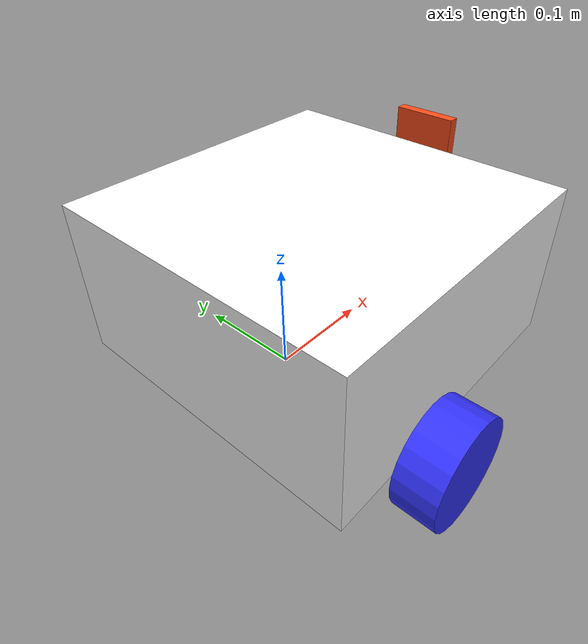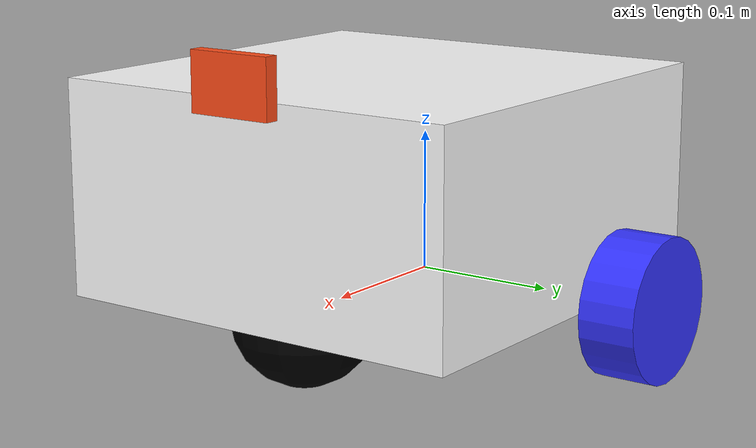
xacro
<?xml version="1.0"?>
<robot xmlns:xacro="http://www.ros.org/wiki/xacro" name="robot">

    <xacro:arg name="ros2_control" default="True"/>

    <xacro:include filename="robot_core.xacro"/>

    <xacro:if value="$(arg ros2_control)">
        <xacro:include filename="ros2_control.xacro"/>
    </xacro:if>
    <xacro:unless value="$(arg ros2_control)">
        <xacro:include filename="gazebo_control.xacro"/>
    </xacro:unless>

    <xacro:include filename="imu.xacro"/>
    <xacro:include filename="depth_camera.xacro"/>

</robot>

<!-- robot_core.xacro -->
<robot xmlns:xacro="http://www.ros.org/wiki/xacro" >

    <xacro:include filename="inertial_macros.xacro"/>

    <material name="white">
        <color rgba="1 1 1 1" />
    </material>

    <material name="orange">
        <color rgba="1 0.3 0.1 1"/>
    </material>

    <material name="blue">
        <color rgba="0.2 0.2 1 1"/>
    </material>

    <material name="red">
        <color rgba="1 0.2 0.2 1"/>
    </material>

    <material name="black">
        <color rgba="0 0 0 1"/>
    </material>

    <!-- BASE LINK -->

    <link name="base_link" />

    <!-- BASE FOOTPRINT LINK-->

    <link name="base_footprint" />
    <joint name="base_footprint_joint" type="fixed">
        <parent link="base_link"/>
        <child link="base_footprint"/>
        <origin xyz="0 0 0" rpy="0 0 0"/>
    </joint>

    <!-- CHASSIS LINK -->

    <joint name="chassis_joint" type="fixed">
        <parent link="base_link"/>
        <child link="chassis"/>
        <origin xyz="-0.1 0 0"/>
    </joint>

    <link name="chassis">
        <visual>
            <origin xyz="0.15 0 0.075"/>
            <geometry>
                <box size="0.3 0.3 0.15"/>
            </geometry>
            <material name="white"/>
        </visual>
        <collision>
            <origin xyz="0.15 0 0.075"/>
            <geometry>
                <box size="0.3 0.3 0.15"/>
            </geometry>
        </collision>
        <xacro:inertial_box mass="0.5" x="0.3" y="0.3" z="0.15">
            <origin xyz="0.15 0 0.075" rpy="0 0 0"/>
        </xacro:inertial_box>
    </link>

    <gazebo reference="chassis">
        <material>Gazebo/White</material>
    </gazebo>

    <!-- LEFT WHEEL LINK -->

    <joint name="left_wheel_joint" type="continuous">
        <parent link="base_link"/>
        <child link="left_wheel"/>
        <origin xyz="0 0.175 0" rpy="-${pi/2} 0 0" />
        <axis xyz="0 0 1"/>
    </joint>

    <link name="left_wheel">
        <visual>
            <geometry>
                <cylinder radius="0.05" length="0.04"/>
            </geometry>
            <material name="blue"/>
        </visual>
        <collision>
            <geometry>
                <cylinder radius="0.05" length="0.04"/>
            </geometry>
        </collision>
        <xacro:inertial_cylinder mass="0.1" length="0.04" radius="0.05">
            <origin xyz="0 0 0" rpy="0 0 0"/>
        </xacro:inertial_cylinder>
    </link>

    <gazebo reference="left_wheel">
        <material>Gazebo/Blue</material>
    </gazebo>

    <!-- RIGHT WHEEL LINK -->

    <joint name="right_wheel_joint" type="continuous">
        <parent link="base_link"/>
        <child link="right_wheel"/>
        <origin xyz="0 -0.175 0" rpy="${pi/2} 0 0" />
        <axis xyz="0 0 -1"/>
    </joint>

    <link name="right_wheel">
        <visual>
            <geometry>
                <cylinder radius="0.05" length="0.04"/>
            </geometry>
            <material name="blue"/>
        </visual>
        <collision>
            <geometry>
                <cylinder radius="0.05" length="0.04"/>
            </geometry>
        </collision>
        <xacro:inertial_cylinder mass="0.1" length="0.04" radius="0.05">
            <origin xyz="0 0 0" rpy="0 0 0"/>
        </xacro:inertial_cylinder>
    </link>

    <gazebo reference="right_wheel">
        <material>Gazebo/Blue</material>
    </gazebo>

    <!-- CASTER WHEEL LINK -->

    <joint name="caster_wheel_joint" type="fixed">
        <parent link="chassis"/>
        <child link="caster_wheel"/>
        <origin xyz="0.24 0 0"/>
    </joint>

    <link name="caster_wheel">
        <visual>
            <geometry>
                <sphere radius="0.05"/>
            </geometry>
            <material name="black"/>
        </visual>
        <collision>
            <geometry>
                <sphere radius="0.05"/>
            </geometry>
        </collision>
        <xacro:inertial_sphere mass="0.1" radius="0.05">
            <origin xyz="0 0 0" rpy="0 0 0"/>
        </xacro:inertial_sphere>
    </link>

    <gazebo reference="caster_wheel">
        <material>Gazebo/Black</material>
        <mu1 value="0.0001"/>
        <mu2 value="0.0001"/>
    </gazebo>

</robot>

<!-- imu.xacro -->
<robot xmlns:xacro="http://www.ros.org/wiki/xacro">

    <link name="imu_link">
        <visual>
            <geometry>
                <box size="0.04 0.04 0.02"/>
            </geometry>
            <material name="orange"/>
        </visual>
    </link>

    <joint name="imu_joint" type="fixed">
      <parent link="base_link" />
        <child link="imu_link" />
        <origin xyz="-0.032 0 0.068" rpy="0 0 0"/>
    </joint>

    <gazebo reference="imu_link">
        <material>Gazebo/Orange</material>

        <sensor name="imu" type="imu">
            <pose>0 0 0 0 0 0</pose>
            <always_on>true</always_on>
            <update_rate>100</update_rate>
            <visualize>true</visualize>
            <imu>
                <angular_velocity>
                    <x>
                        <noise type="gaussian">
                            <mean>0.0</mean>
                            <stddev>2e-4</stddev>
                        </noise>
                    </x>
                    <y>
                        <noise type="gaussian">
                            <mean>0.0</mean>
                            <stddev>2e-4</stddev>
                        </noise>
                    </y>
                    <z>
                        <noise type="gaussian">
                            <mean>0.0</mean>
                            <stddev>2e-4</stddev>
                        </noise>
                    </z>
                </angular_velocity>
                <linear_acceleration>
                    <x>
                        <noise type="gaussian">
                            <mean>0.0</mean>
                            <stddev>1.7e-2</stddev>
                        </noise>
                    </x>
                    <y>
                        <noise type="gaussian">
                            <mean>0.0</mean>
                            <stddev>1.7e-2</stddev>
                        </noise>
                    </y>
                    <z>
                        <noise type="gaussian">
                            <mean>0.0</mean>
                            <stddev>1.7e-2</stddev>
                        </noise>
                    </z>
                </linear_acceleration>
            </imu>
            <plugin name="imu" filename="libgazebo_ros_imu_sensor.so">
                <ros>
                    <remapping>~/out:=imu</remapping>
                </ros>
            </plugin>
        </sensor>
    </gazebo>

</robot>

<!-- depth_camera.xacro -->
<robot xmlns:xacro="http://www.ros.org/wiki/xacro">

  <joint name="camera_joint" type="fixed">
    <parent link="chassis"/>
    <child  link="camera_link"/>
    <origin xyz="0.307 0 0.16" rpy="0 0 0"/>
  </joint>

  <link name="camera_link">
    <visual>
      <geometry>
        <box size="0.010 0.06 0.04"/>
      </geometry>
      <material name="orange"/>
    </visual>
  </link>

  <!-- intermediate frame -->

  <!-- optical frame with inertial expressed in URDF form -->
  <link name="camera_rgb_optical_frame">
  </link>

  <joint name="camera_rgb_optical_joint" type="fixed">
    <parent link="camera_link"/>
    <child  link="camera_rgb_optical_frame"/>
    <!-- rpy as in your original (roll, pitch, yaw) -->
    <origin xyz="0 0 0" rpy="${-pi/2} 0 ${-pi/2}"/>
  </joint>

  <gazebo reference="camera_link">
    <sensor name="camera" type="depth">
      <always_on>true</always_on>
      <visualize>true</visualize>
      <update_rate>30</update_rate>

      <camera name="intel_realsense_d455">
        <horizontal_fov>1.02974</horizontal_fov>
        <image>
          <width>640</width>
          <height>480</height>
          <format>B8G8R8</format>
        </image>
        <clip>
          <near>0.02</near>
          <far>300</far>
        </clip>
        <noise>
          <type>gaussian</type>
          <mean>0.0</mean>
          <stddev>0.007</stddev>
        </noise>
      </camera>

      <plugin name="camera_driver" filename="libgazebo_ros_camera.so">
        <ros></ros>

        <!-- Topics / frame -->
        <camera_name>camera_depth</camera_name>
        <frame_name>camera_rgb_optical_frame</frame_name>
        <image_topic_name>image_raw</image_topic_name>
        <camera_info_topic_name>camera_info</camera_info_topic_name>
        <point_cloud_topic_name>points</point_cloud_topic_name>

        <!-- useful plugin params you can tune -->
        <update_rate>30</update_rate>
        <always_on>true</always_on>
        <visualize>true</visualize>
        <min_depth>0.02</min_depth>
        <max_depth>50.0</max_depth>
      </plugin>
    </sensor>
  </gazebo>

</robot>
